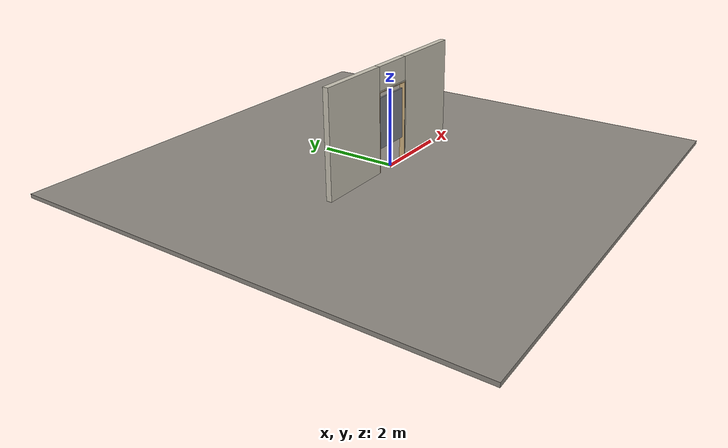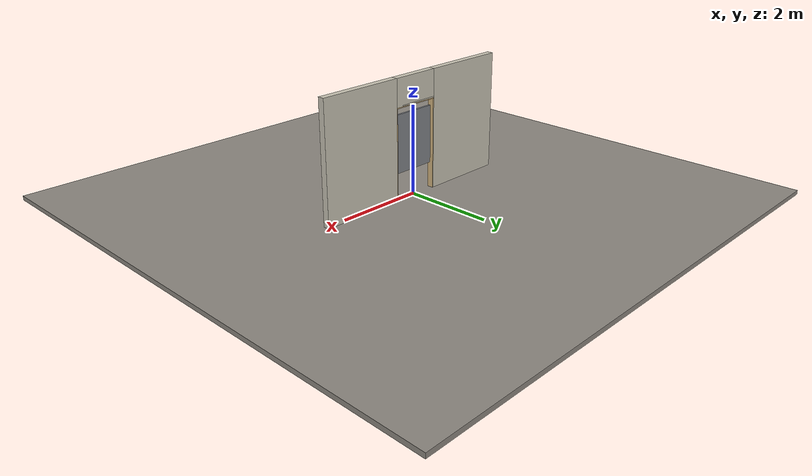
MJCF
<?xml version="1.0" ?>
<mujoco model="db0716_saloon_minimal">
  <compiler angle="radian" meshdir="../../hardware" texturedir="../../textures" autolimits="true" inertiafromgeom="false"/>
  <option timestep="0.002" integrator="implicitfast" cone="elliptic" impratio="10" noslip_iterations="3">
    <flag multiccd="enable"/>
  </option>
  <size memory="16M"/>
  <default>
    <geom condim="4" solref="0.005 1" solimp="0.95 0.99 0.001"/>
    <joint solreflimit="0.005 1" solimplimit="0.95 0.99 0.001"/>
    <tendon solreflimit="0.005 1"/>
    <equality solref="0.002 1"/>
  </default>
  <visual>
    <headlight ambient="0.4 0.4 0.4" diffuse="0.7 0.7 0.7" specular="0.2 0.2 0.2"/>
    <quality shadowsize="4096"/>
    <map znear="0.01" zfar="60"/>
  </visual>
  <asset>
    <material name="mat_floor" rgba="0.55 0.53 0.5 1" specular="0.2" shininess="0.15" reflectance="0"/>
    <material name="mat_wall" rgba="0.78 0.76 0.7 1" specular="0.2" shininess="0.1" reflectance="0"/>
    <material name="mat_frame" rgba="0.82 0.7 0.5 1" specular="0.2" shininess="0.45" reflectance="0"/>
    <material name="mat_leaf_a" rgba="0.5 0.51 0.53 1" specular="0.2" shininess="0.51" reflectance="0"/>
    <material name="mat_leaf_a_louver" rgba="0.425 0.433 0.451 1" specular="0.2" shininess="0.4" reflectance="0"/>
    <material name="mat_hinge" rgba="0.65 0.66 0.68 1" specular="0.74" shininess="0.5" reflectance="0.36"/>
    <material name="mat_kick" rgba="0.75 0.76 0.77 1" specular="0.8" shininess="0.65" reflectance="0.4"/>
    <material name="mat_leaf_b" rgba="0.5 0.51 0.53 1" specular="0.2" shininess="0.51" reflectance="0"/>
    <material name="mat_leaf_b_louver" rgba="0.425 0.433 0.451 1" specular="0.2" shininess="0.4" reflectance="0"/>
    <texture name="skybox" type="skybox" builtin="gradient" rgb1="0.6 0.7 0.85" rgb2="0.9 0.92 0.95" width="256" height="256"/>
  </asset>
  <worldbody>
    <light name="sun" pos="1.5 -2.5 4" dir="-0.3 0.5 -0.8" directional="true" diffuse="0.8 0.8 0.8" specular="0.3 0.3 0.3" castshadow="true"/>
    <light name="fill" pos="-1.5 2.5 3" dir="0.3 -0.5 -0.7" directional="true" diffuse="0.35 0.35 0.4" castshadow="false"/>
    <camera name="robot_view" pos="0 -2.546875 1.738125" xyaxes="1 0 0 0 0.26963 0.962964" fovy="52"/>
    <camera name="far_view" pos="0 2.546875 1.738125" xyaxes="-1 0 0 0 -0.26963 0.962964" fovy="52"/>
    <camera name="iso" pos="1.935625 -2.139375 2.145625" xyaxes="0.741536 0.670913 0 -0.242917 0.268487 0.932151" fovy="46"/>
    <camera name="detail_handle" pos="0.48 -0.8 1.28" xyaxes="0.97561 0.219512 0 -0.070934 0.315262 0.94635" fovy="38"/>
    <geom name="floor" type="box" size="6 6 0.05" pos="0 0 -0.05" material="mat_floor" group="0" contype="1" conaffinity="1" friction="0.8 0.005 0.0001" density="2400"/>
    <geom name="wall_left" type="box" size="0.9735 0.0725 1.35" pos="-1.5265 0 1.35" material="mat_wall" group="0" contype="1" conaffinity="1" friction="0.6 0.005 0.0001" density="800"/>
    <geom name="wall_right" type="box" size="0.9735 0.0725 1.35" pos="1.5265 0 1.35" material="mat_wall" group="0" contype="1" conaffinity="1" friction="0.6 0.005 0.0001" density="800"/>
    <geom name="wall_header" type="box" size="0.553 0.0725 0.3155" pos="0 0 2.3845" material="mat_wall" group="0" contype="1" conaffinity="1" friction="0.6 0.005 0.0001" density="800"/>
    <geom name="jamb_hinge" type="box" size="0.0095 0.0725 1.025" pos="-0.5435 0 1.025" material="mat_frame" group="0" contype="1" conaffinity="1" friction="0.6 0.005 0.0001" density="400"/>
    <geom name="jamb_strike" type="box" size="0.0095 0.0725 1.025" pos="0.5435 0 1.025" material="mat_frame" group="0" contype="1" conaffinity="1" friction="0.6 0.005 0.0001" density="400"/>
    <geom name="stud_strike" type="box" size="0.015 0.0725 1.025" pos="0.568 0 1.025" material="mat_wall" group="0" contype="1" conaffinity="1" friction="0.6 0.005 0.0001" density="500"/>
    <geom name="jamb_head" type="box" size="0.568 0.0725 0.0095" pos="0.015 0 2.0595" material="mat_frame" group="0" contype="1" conaffinity="1" friction="0.6 0.005 0.0001" density="400"/>
    <geom name="head_stud" type="box" size="0.568 0.0725 0.015" pos="0.015 0 2.084" material="mat_wall" group="0" contype="1" conaffinity="1" friction="0.6 0.005 0.0001" density="500"/>
    <site name="approach_point" pos="0 -1.5 0" quat="1 0 0 0" size="0.05" rgba="0.2 0.9 0.2 0.5" group="4"/>
    <site name="goal_point" pos="0 1.5 0" quat="1 0 0 0" size="0.05" rgba="0.2 0.9 0.2 0.5" group="4"/>
    <site name="door_plane_center" pos="0 0 1.025" quat="1 0 0 0" size="0.02" rgba="0.2 0.9 0.2 0.5" group="4"/>
    <body name="leaf_a" pos="-0.534 0 0">
      <inertial pos="0.278 0 1.25" mass="7.267" quat="-0.5 0.5 0.5 0.5" diaginertia="0.152568243 1.024608243 1.174831667"/>
      <joint name="leaf_a_hinge" type="hinge" axis="0 0 1" pos="0.028 0 0" limited="true" range="-1.570796 1.570796" damping="0.764674" frictionloss="0.21806" stiffness="6" springref="0" armature="0.02"/>
      <geom name="leaf_a_slab" type="box" size="0.25 0.022 0.65" pos="0.278 0 1.25" material="mat_leaf_a" group="0" contype="1" conaffinity="1" friction="0.35 0.005 0.0001" density="1"/>
      <site name="leaf_a_push_site" pos="0.403 -0.022 1.38" quat="1 0 0 0" size="0.015" rgba="0.2 0.9 0.2 0.5" group="4"/>
    </body>
    <body name="leaf_b" pos="0.534 0 0">
      <inertial pos="-0.278 0 1.25" mass="7.267" quat="-0.5 0.5 0.5 0.5" diaginertia="0.152568243 1.024608243 1.174831667"/>
      <joint name="leaf_b_hinge" type="hinge" axis="0 0 -1" pos="-0.028 0 0" limited="true" range="-1.570796 1.570796" damping="0.764674" frictionloss="0.21806" stiffness="6" springref="0" armature="0.02"/>
      <geom name="leaf_b_slab" type="box" size="0.25 0.022 0.65" pos="-0.278 0 1.25" material="mat_leaf_b" group="0" contype="1" conaffinity="1" friction="0.35 0.005 0.0001" density="1"/>
      <site name="leaf_b_push_site" pos="-0.403 -0.022 1.38" quat="1 0 0 0" size="0.015" rgba="0.2 0.9 0.2 0.5" group="4"/>
    </body>
  </worldbody>
  <sensor>
    <jointpos name="leaf_a_hinge_pos" joint="leaf_a_hinge"/>
    <jointvel name="leaf_a_hinge_vel" joint="leaf_a_hinge"/>
    <jointpos name="leaf_b_hinge_pos" joint="leaf_b_hinge"/>
    <jointvel name="leaf_b_hinge_vel" joint="leaf_b_hinge"/>
  </sensor>
</mujoco>
